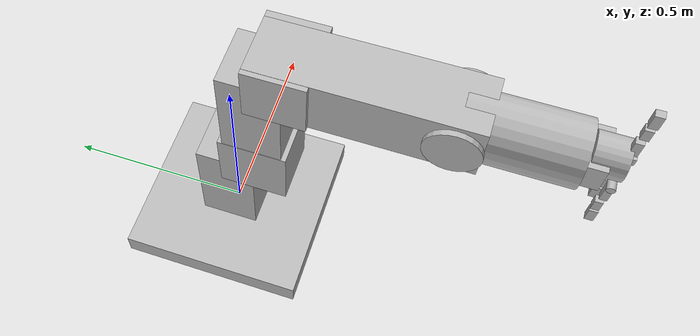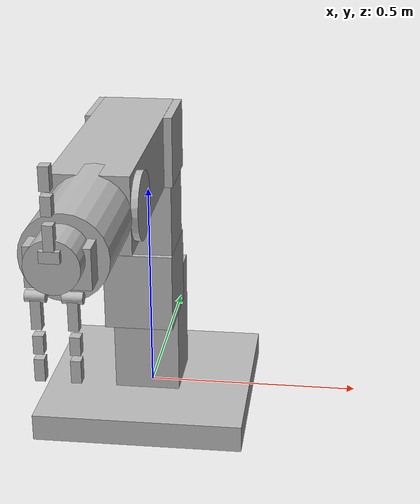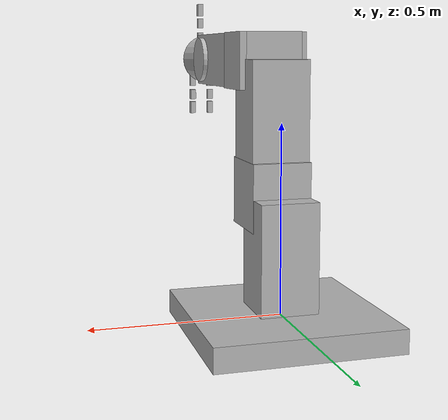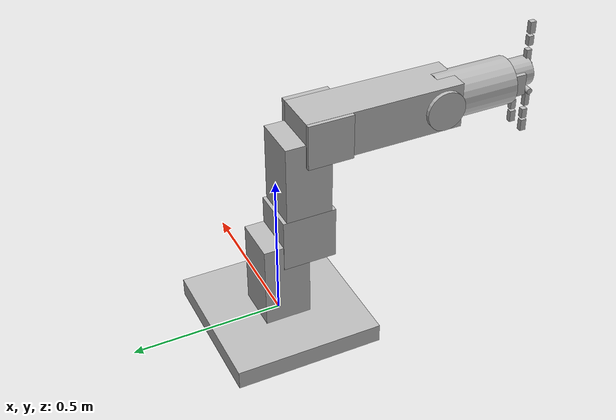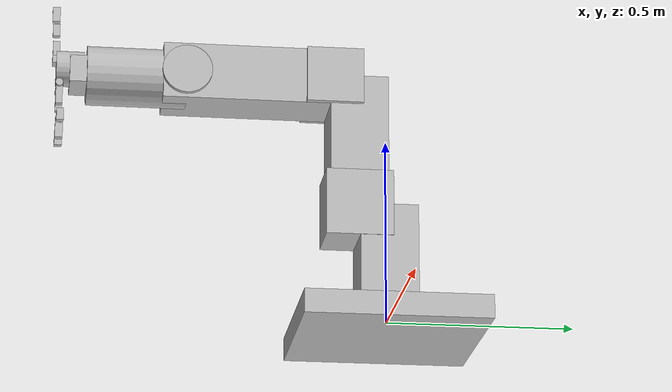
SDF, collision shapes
<sdf version='1.6'>
  <model name='gripbot'>
    <link name='dummy_link'>
      <pose frame=''>0 0 0 0 -0 0</pose>
      <inertial>
        <pose frame=''>0 0 0 0 -0 0</pose>
        <mass>240</mass>
        <inertia>
          <ixx>2.4213</ixx>
          <ixy>0</ixy>
          <ixz>0</ixz>
          <iyy>2.4213</iyy>
          <iyz>0</iyz>
          <izz>4.76351</izz>
        </inertia>
      </inertial>
      <collision name='dummy_link_fixed_joint_lump__gripbot::base_mount_visual_collision'>
        <pose frame=''>0 0 -0.01433 0 -0 0</pose>
        <geometry>
          <box>
            <size>0.4898 0.4898 0.0631</size>
          </box>
        </geometry>
      </collision>
      <visual name='dummy_link_fixed_joint_lump__base_mount_visual_visual'>
        <pose frame=''>0 0 0 0 -0 0</pose>
        <geometry>
          <mesh>
            <scale>1 1 1</scale>
            <uri>/home/ynki9/Dev/catkin/src/gripbot_description/meshes/stl/Circle.004.stl</uri>
          </mesh>
        </geometry>
      </visual>
      <velocity_decay/>
      <velocity_decay/>
      <gravity>1</gravity>
      <velocity_decay/>
    </link>
    <link name='base_column_link'>
      <pose frame=''>0 0 0 0 -0 0</pose>
      <inertial>
        <pose frame=''>0 0 0 0 -0 0</pose>
        <mass>33.204</mass>
        <inertia>
          <ixx>0.17785</ixx>
          <ixy>0</ixy>
          <ixz>0</ixz>
          <iyy>0.15673</iyy>
          <iyz>0</iyz>
          <izz>0.156739</izz>
        </inertia>
      </inertial>
      <collision name='base_column_link_fixed_joint_lump__gripbot::base_column_mount_visual_collision'>
        <pose frame=''>0 -0.07833 0.30885 0 -0 0</pose>
        <geometry>
          <box>
            <size>0.15655 0.17927 0.17927</size>
          </box>
        </geometry>
      </collision>
      <collision name='base_column_link_fixed_joint_lump__gripbot::base_column_visual_collision_1'>
        <pose frame=''>0 0 0.15275 0 -0 0</pose>
        <geometry>
          <box>
            <size>0.15423 0.15423 0.30549</size>
          </box>
        </geometry>
      </collision>
      <visual name='base_column_link_fixed_joint_lump__base_column_receptor_visual_visual'>
        <pose frame=''>0 -0.07833 0.30885 0 -0 0</pose>
        <geometry>
          <mesh>
            <scale>1 1 1</scale>
            <uri>/home/ynki9/Dev/catkin/src/gripbot_description/meshes/stl/Circle.002.stl</uri>
          </mesh>
        </geometry>
      </visual>
      <visual name='base_column_link_fixed_joint_lump__base_column_visual_visual_1'>
        <pose frame=''>0 0 0 0 -0 0</pose>
        <geometry>
          <mesh>
            <scale>1 1 1</scale>
            <uri>/home/ynki9/Dev/catkin/src/gripbot_description/meshes/stl/Circle.stl</uri>
          </mesh>
        </geometry>
      </visual>
      <gravity>0</gravity>
      <velocity_decay/>
    </link>
    <joint name='base_column_link' type='revolute'>
      <child>base_column_link</child>
      <parent>dummy_link</parent>
      <axis>
        <xyz>0 0 1</xyz>
        <limit>
          <lower>-3.14159</lower>
          <upper>3.14159</upper>
          <effort>135</effort>
          <velocity>1</velocity>
        </limit>
        <dynamics>
          <spring_reference>0</spring_reference>
          <spring_stiffness>0</spring_stiffness>
        </dynamics>
        <use_parent_model_frame>1</use_parent_model_frame>
      </axis>
      <physics>
        <ode>
          <limit>
            <cfm>0</cfm>
            <erp>0.2</erp>
          </limit>
        </ode>
      </physics>
    </joint>
    <link name='girdle_visual_link'>
      <pose frame=''>0 -0.07833 0.30885 0 -0 0</pose>
      <inertial>
        <pose frame=''>0 0 0 0 -0 0</pose>
        <mass>8.62636</mass>
        <inertia>
          <ixx>0.085577</ixx>
          <ixy>0</ixy>
          <ixz>0</ixz>
          <iyy>0.085577</iyy>
          <iyz>0</iyz>
          <izz>0.034199</izz>
        </inertia>
      </inertial>
      <collision name='girdle_visual_link_fixed_joint_lump__gripbot::girdle_visual_collision'>
        <pose frame=''>0 0 0.19929 0 -0 0</pose>
        <geometry>
          <box>
            <size>0.15423 0.15423 0.30864</size>
          </box>
        </geometry>
      </collision>
      <visual name='girdle_visual_link_fixed_joint_lump__girdle_mount_visual_visual'>
        <pose frame=''>0 0 0 0 -0 0</pose>
        <geometry>
          <mesh>
            <scale>1 1 1</scale>
            <uri>/home/ynki9/Dev/catkin/src/gripbot_description/meshes/stl/Circle.005.stl</uri>
          </mesh>
        </geometry>
      </visual>
      <visual name='girdle_visual_link_fixed_joint_lump__girdle_receptor_visual_visual_1'>
        <pose frame=''>0 0 0 0 -0 0</pose>
        <geometry>
          <mesh>
            <scale>1 1 1</scale>
            <uri>/home/ynki9/Dev/catkin/src/gripbot_description/meshes/stl/Circle.001.stl</uri>
          </mesh>
        </geometry>
      </visual>
      <visual name='girdle_visual_link_fixed_joint_lump__girdle_visual_visual_2'>
        <pose frame=''>0 0 0 0 -0 0</pose>
        <geometry>
          <mesh>
            <scale>1 1 1</scale>
            <uri>/home/ynki9/Dev/catkin/src/gripbot_description/meshes/stl/Circle.003.stl</uri>
          </mesh>
        </geometry>
      </visual>
      <gravity>0</gravity>
      <velocity_decay/>
      <self_collide>0</self_collide>
    </link>
    <joint name='girdle_visual_link' type='revolute'>
      <child>girdle_visual_link</child>
      <parent>base_column_link</parent>
      <axis>
        <xyz>1 0 0</xyz>
        <limit>
          <lower>-0.5236</lower>
          <upper>1.95477</upper>
          <effort>50000</effort>
          <velocity>1</velocity>
        </limit>
        <dynamics>
          <spring_reference>0</spring_reference>
          <spring_stiffness>0</spring_stiffness>
        </dynamics>
        <use_parent_model_frame>1</use_parent_model_frame>
      </axis>
      <physics>
        <ode>
          <limit>
            <cfm>0</cfm>
            <erp>0.2</erp>
          </limit>
        </ode>
      </physics>
    </joint>
    <link name='arm_visual_link'>
      <pose frame=''>0 -0.14457 0.65861 0 -0 0</pose>
      <inertial>
        <pose frame=''>0 0 0 0 -0 0</pose>
        <mass>19.5672</mass>
        <inertia>
          <ixx>0.50376</ixx>
          <ixy>0</ixy>
          <ixz>0</ixz>
          <iyy>0.0757885</iyy>
          <iyz>0</iyz>
          <izz>0.503755</izz>
        </inertia>
      </inertial>
      <collision name='arm_visual_link_fixed_joint_lump__gripbot::arm_visual_collision'>
        <pose frame=''>-0.00265 -0.19123 0.0002 0 -0 0</pose>
        <geometry>
          <box>
            <size>0.15244 0.53451 0.15245</size>
          </box>
        </geometry>
      </collision>
      <collision name='arm_visual_link_fixed_joint_lump__gripbot::girdle_receptor_visual_collision_1'>
        <pose frame=''>0 0 0 0 -0 0</pose>
        <geometry>
          <box>
            <size>0.18304 0.15204 0.15204</size>
          </box>
        </geometry>
      </collision>
      <visual name='arm_visual_link_fixed_joint_lump__arm_visual_visual'>
        <pose frame=''>0 0 0 0 -0 0</pose>
        <geometry>
          <mesh>
            <scale>1 1 1</scale>
            <uri>/home/ynki9/Dev/catkin/src/gripbot_description/meshes/stl/ID36.001.stl</uri>
          </mesh>
        </geometry>
      </visual>
      <gravity>0</gravity>
      <velocity_decay/>
    </link>
    <joint name='arm_visual_link' type='revolute'>
      <child>arm_visual_link</child>
      <parent>girdle_visual_link</parent>
      <axis>
        <xyz>1 0 0</xyz>
        <limit>
          <lower>-1.5708</lower>
          <upper>0.59341</upper>
          <effort>135</effort>
          <velocity>1</velocity>
        </limit>
        <dynamics>
          <spring_reference>0</spring_reference>
          <spring_stiffness>0</spring_stiffness>
        </dynamics>
        <use_parent_model_frame>1</use_parent_model_frame>
      </axis>
      <physics>
        <ode>
          <limit>
            <cfm>0</cfm>
            <erp>0.2</erp>
          </limit>
        </ode>
      </physics>
    </joint>
    <link name='forearm_visual_link'>
      <pose frame=''>-0.00268 -0.54012 0.65851 0 -0 0</pose>
      <inertial>
        <pose frame=''>0 0 0 0 -0 0</pose>
        <mass>9.05507</mass>
        <inertia>
          <ixx>0.067333</ixx>
          <ixy>0</ixy>
          <ixz>0</ixz>
          <iyy>0.0673332</iyy>
          <iyz>0</iyz>
          <izz>0.028292</izz>
        </inertia>
      </inertial>
      <collision name='forearm_visual_link_fixed_joint_lump__forearm_collision_collision'>
        <pose frame=''>0 -0.1324 0 1.5708 -0 0</pose>
        <geometry>
          <cylinder>
            <length>0.26549</length>
            <radius>0.07905</radius>
          </cylinder>
        </geometry>
      </collision>
      <collision name='forearm_visual_link_fixed_joint_lump__forearm_mount_collision_collision_1'>
        <pose frame=''>0 0 0 1.5708 -0 1.5708</pose>
        <geometry>
          <cylinder>
            <length>0.17955</length>
            <radius>0.0665</radius>
          </cylinder>
        </geometry>
      </collision>
      <visual name='forearm_visual_link_fixed_joint_lump__forearm_visual_visual'>
        <pose frame=''>0 0 0 0 -0 0</pose>
        <geometry>
          <mesh>
            <scale>1 1 1</scale>
            <uri>/home/ynki9/Dev/catkin/src/gripbot_description/meshes/stl/ID82.001.stl</uri>
          </mesh>
        </geometry>
      </visual>
      <gravity>0</gravity>
      <velocity_decay/>
      <self_collide>0</self_collide>
    </link>
    <joint name='forearm_visual_link' type='revolute'>
      <child>forearm_visual_link</child>
      <parent>arm_visual_link</parent>
      <axis>
        <xyz>1 0 0</xyz>
        <limit>
          <lower>-1.5708</lower>
          <upper>2.18166</upper>
          <effort>135</effort>
          <velocity>1</velocity>
        </limit>
        <dynamics>
          <spring_reference>0</spring_reference>
          <spring_stiffness>0</spring_stiffness>
        </dynamics>
        <use_parent_model_frame>1</use_parent_model_frame>
      </axis>
      <physics>
        <ode>
          <limit>
            <cfm>0</cfm>
            <erp>0.2</erp>
          </limit>
        </ode>
      </physics>
    </joint>
    <link name='base_wrist_link'>
      <pose frame=''>-0.00268 -0.80602 0.65851 0 -0 0</pose>
      <inertial>
        <pose frame=''>0 0 0 0 -0 0</pose>
        <mass>3.6</mass>
        <inertia>
          <ixx>0.01</ixx>
          <ixy>0</ixy>
          <ixz>0</ixz>
          <iyy>0.01</iyy>
          <iyz>0</iyz>
          <izz>0.01</izz>
        </inertia>
      </inertial>
      <collision name='base_wrist_link_fixed_joint_lump__base_link_collision_collision'>
        <pose frame=''>-0.00011 -0.00716 4e-05 0 -0 0</pose>
        <geometry>
          <box>
            <size>0.1135 0.07446 0.07319</size>
          </box>
        </geometry>
      </collision>
      <collision name='base_wrist_link_fixed_joint_lump__base_link_collision_1_collision_1'>
        <pose frame=''>-0.00011 -0.04313 0.01634 -1.5708 0 0</pose>
        <geometry>
          <cylinder>
            <length>0.074303</length>
            <radius>0.04771</radius>
          </cylinder>
        </geometry>
      </collision>
      <visual name='base_wrist_link_fixed_joint_lump__base_link_socket_visual_visual'>
        <pose frame=''>-0.00011 -0.00716 4e-05 0 -0 0</pose>
        <geometry>
          <mesh>
            <scale>1 1 1</scale>
            <uri>/home/ynki9/Dev/catkin/src/gripbot_description/meshes/stl/Palm.001.stl</uri>
          </mesh>
        </geometry>
      </visual>
      <visual name='base_wrist_link_fixed_joint_lump__base_link_visual_visual_1'>
        <pose frame=''>-0.00011 -0.00716 4e-05 0 -0 0</pose>
        <geometry>
          <mesh>
            <scale>1 1 1</scale>
            <uri>/home/ynki9/Dev/catkin/src/gripbot_description/meshes/stl/Palm.stl</uri>
          </mesh>
        </geometry>
      </visual>
      <gravity>0</gravity>
      <velocity_decay/>
    </link>
    <joint name='base_wrist_link' type='revolute'>
      <child>base_wrist_link</child>
      <parent>forearm_visual_link</parent>
      <axis>
        <xyz>0 -1 0</xyz>
        <limit>
          <lower>-1.5708</lower>
          <upper>1.5708</upper>
          <effort>10000</effort>
          <velocity>1</velocity>
        </limit>
        <dynamics>
          <spring_reference>0</spring_reference>
          <spring_stiffness>0</spring_stiffness>
        </dynamics>
        <use_parent_model_frame>1</use_parent_model_frame>
      </axis>
      <physics>
        <ode>
          <limit>
            <cfm>0</cfm>
            <erp>0.2</erp>
          </limit>
        </ode>
      </physics>
    </joint>
    <link name='finger_1_base_link'>
      <pose frame=''>-0.03343 -0.87681 0.62052 0 -0 0</pose>
      <inertial>
        <pose frame=''>0 0 0 0 -0 0</pose>
        <mass>0.101</mass>
        <inertia>
          <ixx>0.01</ixx>
          <ixy>0</ixy>
          <ixz>0</ixz>
          <iyy>0.01</iyy>
          <iyz>0</iyz>
          <izz>0.01</izz>
        </inertia>
      </inertial>
      <collision name='finger_1_base_link_fixed_joint_lump__finger_2_base_collision_collision'>
        <pose frame=''>0 0 0 -1.5708 0 1.5708</pose>
        <geometry>
          <cylinder>
            <length>0.034775</length>
            <radius>0.010094</radius>
          </cylinder>
        </geometry>
      </collision>
      <visual name='finger_1_base_link_fixed_joint_lump__finger_1_base_visual_visual'>
        <pose frame=''>0 0 0 0 -0 0</pose>
        <geometry>
          <mesh>
            <scale>1 1 1</scale>
            <uri>/home/ynki9/Dev/catkin/src/gripbot_description/meshes/stl/FingerBase.stl</uri>
          </mesh>
        </geometry>
      </visual>
      <gravity>0</gravity>
      <velocity_decay/>
      <self_collide>0</self_collide>
    </link>
    <joint name='finger_1_base_link' type='revolute'>
      <child>finger_1_base_link</child>
      <parent>base_wrist_link</parent>
      <axis>
        <xyz>0 -1 0</xyz>
        <limit>
          <lower>-2.04204</lower>
          <upper>0.7854</upper>
          <effort>10000</effort>
          <velocity>1</velocity>
        </limit>
        <dynamics>
          <spring_reference>0</spring_reference>
          <spring_stiffness>0</spring_stiffness>
        </dynamics>
        <use_parent_model_frame>1</use_parent_model_frame>
      </axis>
      <physics>
        <ode>
          <limit>
            <cfm>0</cfm>
            <erp>0.2</erp>
          </limit>
        </ode>
      </physics>
    </joint>
    <link name='finger_1_proximal_link'>
      <pose frame=''>-0.03343 -0.87681 0.62052 0 -0 0</pose>
      <inertial>
        <pose frame=''>0 0 0 0 -0 0</pose>
        <mass>0.101</mass>
        <inertia>
          <ixx>0.01</ixx>
          <ixy>0</ixy>
          <ixz>0</ixz>
          <iyy>0.01</iyy>
          <iyz>0</iyz>
          <izz>0.01</izz>
        </inertia>
      </inertial>
      <collision name='finger_1_proximal_link_fixed_joint_lump__finger_1_proximal_collision_collision'>
        <pose frame=''>0 0 -0.03 0 -0 0</pose>
        <geometry>
          <box>
            <size>0.01754 0.01751 0.05287</size>
          </box>
        </geometry>
      </collision>
      <visual name='finger_1_proximal_link_fixed_joint_lump__finger_1_proximal_visual_visual'>
        <pose frame=''>0 0 0 0 -0 0</pose>
        <geometry>
          <mesh>
            <scale>1 1 1</scale>
            <uri>/home/ynki9/Dev/catkin/src/gripbot_description/meshes/stl/FingerProximal.001.stl</uri>
          </mesh>
        </geometry>
      </visual>
      <gravity>0</gravity>
      <velocity_decay/>
      <self_collide>0</self_collide>
    </link>
    <joint name='finger_1_proximal_link' type='revolute'>
      <child>finger_1_proximal_link</child>
      <parent>finger_1_base_link</parent>
      <axis>
        <xyz>-1 0 0</xyz>
        <limit>
          <lower>0</lower>
          <upper>1.5708</upper>
          <effort>10000</effort>
          <velocity>1</velocity>
        </limit>
        <dynamics>
          <spring_reference>0</spring_reference>
          <spring_stiffness>0</spring_stiffness>
        </dynamics>
        <use_parent_model_frame>1</use_parent_model_frame>
      </axis>
      <physics>
        <ode>
          <limit>
            <cfm>0</cfm>
            <erp>0.2</erp>
          </limit>
        </ode>
      </physics>
    </joint>
    <link name='finger_1_mid_link'>
      <pose frame=''>-0.03343 -0.87256 0.56001 0 -0 0</pose>
      <inertial>
        <pose frame=''>0 0 0 0 -0 0</pose>
        <mass>0.101</mass>
        <inertia>
          <ixx>0.01</ixx>
          <ixy>0</ixy>
          <ixz>0</ixz>
          <iyy>0.01</iyy>
          <iyz>0</iyz>
          <izz>0.01</izz>
        </inertia>
      </inertial>
      <collision name='finger_1_mid_link_fixed_joint_lump__finger_1_mid_collision_collision'>
        <pose frame=''>0 -0.00096 -0.02551 0 -0 0</pose>
        <geometry>
          <box>
            <size>0.01784 0.01899 0.03309</size>
          </box>
        </geometry>
      </collision>
      <visual name='finger_1_mid_link_fixed_joint_lump__finger_1_mid_visual_visual'>
        <pose frame=''>0 0 0 0 -0 0</pose>
        <geometry>
          <mesh>
            <scale>1 1 1</scale>
            <uri>/home/ynki9/Dev/catkin/src/gripbot_description/meshes/stl/FingerMid.001.stl</uri>
          </mesh>
        </geometry>
      </visual>
      <gravity>0</gravity>
      <velocity_decay/>
      <self_collide>0</self_collide>
    </link>
    <joint name='finger_1_mid_link' type='revolute'>
      <child>finger_1_mid_link</child>
      <parent>finger_1_proximal_link</parent>
      <axis>
        <xyz>-1 0 0</xyz>
        <limit>
          <lower>0</lower>
          <upper>1.5708</upper>
          <effort>10000</effort>
          <velocity>1</velocity>
        </limit>
        <dynamics>
          <spring_reference>0</spring_reference>
          <spring_stiffness>0</spring_stiffness>
        </dynamics>
        <use_parent_model_frame>1</use_parent_model_frame>
      </axis>
      <physics>
        <ode>
          <limit>
            <cfm>0</cfm>
            <erp>0.2</erp>
          </limit>
        </ode>
      </physics>
    </joint>
    <link name='finger_1_distal_link'>
      <pose frame=''>-0.03343 -0.87297 0.51788 0 -0 0</pose>
      <inertial>
        <pose frame=''>0 0 0 0 -0 0</pose>
        <mass>0.101</mass>
        <inertia>
          <ixx>0.01</ixx>
          <ixy>0</ixy>
          <ixz>0</ixz>
          <iyy>0.01</iyy>
          <iyz>0</iyz>
          <izz>0.01</izz>
        </inertia>
      </inertial>
      <collision name='finger_1_distal_link_fixed_joint_lump__finger_1_distal_collision_collision'>
        <pose frame=''>0 -0.00197 -0.029 0 -0 0</pose>
        <geometry>
          <box>
            <size>0.0175 0.02023 0.04043</size>
          </box>
        </geometry>
      </collision>
      <visual name='finger_1_distal_link_fixed_joint_lump__finger_1_distal_visual_visual'>
        <pose frame=''>0 0 0 0 -0 0</pose>
        <geometry>
          <mesh>
            <scale>1 1 1</scale>
            <uri>/home/ynki9/Dev/catkin/src/gripbot_description/meshes/stl/FingerDistal.001.stl</uri>
          </mesh>
        </geometry>
      </visual>
      <gravity>0</gravity>
      <velocity_decay/>
      <self_collide>0</self_collide>
    </link>
    <joint name='finger_1_distal_link' type='revolute'>
      <child>finger_1_distal_link</child>
      <parent>finger_1_mid_link</parent>
      <axis>
        <xyz>-1 0 0</xyz>
        <limit>
          <lower>0</lower>
          <upper>1.5708</upper>
          <effort>10000</effort>
          <velocity>1</velocity>
        </limit>
        <dynamics>
          <spring_reference>0</spring_reference>
          <spring_stiffness>0</spring_stiffness>
        </dynamics>
        <use_parent_model_frame>1</use_parent_model_frame>
      </axis>
      <physics>
        <ode>
          <limit>
            <cfm>0</cfm>
            <erp>0.2</erp>
          </limit>
        </ode>
      </physics>
    </joint>
    <link name='finger_2_base_link'>
      <pose frame=''>0.02807 -0.87681 0.62052 0 -0 0</pose>
      <inertial>
        <pose frame=''>0 0 0 0 -0 0</pose>
        <mass>0.101</mass>
        <inertia>
          <ixx>0.01</ixx>
          <ixy>0</ixy>
          <ixz>0</ixz>
          <iyy>0.01</iyy>
          <iyz>0</iyz>
          <izz>0.01</izz>
        </inertia>
      </inertial>
      <collision name='finger_2_base_link_fixed_joint_lump__finger_2_base_collision_collision'>
        <pose frame=''>0 0 0 -1.5708 0 1.5708</pose>
        <geometry>
          <cylinder>
            <length>0.034775</length>
            <radius>0.010094</radius>
          </cylinder>
        </geometry>
      </collision>
      <visual name='finger_2_base_link_fixed_joint_lump__finger_2_base_visual_visual'>
        <pose frame=''>0 0 0 -1.5708 0 1.5708</pose>
        <geometry>
          <mesh>
            <scale>1 1 1</scale>
            <uri>/home/ynki9/Dev/catkin/src/gripbot_description/meshes/stl/FingerBase.001.stl</uri>
          </mesh>
        </geometry>
      </visual>
      <gravity>0</gravity>
      <velocity_decay/>
      <self_collide>0</self_collide>
    </link>
    <joint name='finger_2_base_link' type='revolute'>
      <child>finger_2_base_link</child>
      <parent>base_wrist_link</parent>
      <axis>
        <xyz>0 -1 0</xyz>
        <limit>
          <lower>-0.7854</lower>
          <upper>2.04204</upper>
          <effort>10000</effort>
          <velocity>1</velocity>
        </limit>
        <dynamics>
          <spring_reference>0</spring_reference>
          <spring_stiffness>0</spring_stiffness>
        </dynamics>
        <use_parent_model_frame>1</use_parent_model_frame>
      </axis>
      <physics>
        <ode>
          <limit>
            <cfm>0</cfm>
            <erp>0.2</erp>
          </limit>
        </ode>
      </physics>
    </joint>
    <link name='finger_2_proximal_link'>
      <pose frame=''>0.02807 -0.87681 0.62052 0 -0 0</pose>
      <inertial>
        <pose frame=''>0 0 0 0 -0 0</pose>
        <mass>0.101</mass>
        <inertia>
          <ixx>0.01</ixx>
          <ixy>0</ixy>
          <ixz>0</ixz>
          <iyy>0.01</iyy>
          <iyz>0</iyz>
          <izz>0.01</izz>
        </inertia>
      </inertial>
      <collision name='finger_2_proximal_link_fixed_joint_lump__finger_2_proximal_collision_collision'>
        <pose frame=''>0 0 -0.03 0 -0 0</pose>
        <geometry>
          <box>
            <size>0.01754 0.01751 0.05287</size>
          </box>
        </geometry>
      </collision>
      <visual name='finger_2_proximal_link_fixed_joint_lump__finger_2_proximal_visual_visual'>
        <pose frame=''>0 0 0 0 -0 0</pose>
        <geometry>
          <mesh>
            <scale>1 1 1</scale>
            <uri>/home/ynki9/Dev/catkin/src/gripbot_description/meshes/stl/FingerProximal.stl</uri>
          </mesh>
        </geometry>
      </visual>
      <gravity>0</gravity>
      <velocity_decay/>
      <self_collide>0</self_collide>
    </link>
    <joint name='finger_2_proximal_link' type='revolute'>
      <child>finger_2_proximal_link</child>
      <parent>finger_2_base_link</parent>
      <axis>
        <xyz>1 0 0</xyz>
        <limit>
          <lower>-1.5708</lower>
          <upper>0</upper>
          <effort>10000</effort>
          <velocity>1</velocity>
        </limit>
        <dynamics>
          <spring_reference>0</spring_reference>
          <spring_stiffness>0</spring_stiffness>
        </dynamics>
        <use_parent_model_frame>1</use_parent_model_frame>
      </axis>
      <physics>
        <ode>
          <limit>
            <cfm>0</cfm>
            <erp>0.2</erp>
          </limit>
        </ode>
      </physics>
    </joint>
    <link name='finger_2_mid_link'>
      <pose frame=''>0.02807 -0.87256 0.56001 0 -0 0</pose>
      <inertial>
        <pose frame=''>0 0 0 0 -0 0</pose>
        <mass>0.101</mass>
        <inertia>
          <ixx>0.01</ixx>
          <ixy>0</ixy>
          <ixz>0</ixz>
          <iyy>0.01</iyy>
          <iyz>0</iyz>
          <izz>0.01</izz>
        </inertia>
      </inertial>
      <collision name='finger_2_mid_link_fixed_joint_lump__finger_2_mid_collision_collision'>
        <pose frame=''>0 0 -0.02551 0 -0 0</pose>
        <geometry>
          <box>
            <size>0.01784 0.01899 0.03281</size>
          </box>
        </geometry>
      </collision>
      <visual name='finger_2_mid_link_fixed_joint_lump__finger_2_mid_visual_visual'>
        <pose frame=''>0 0 0 0 -0 0</pose>
        <geometry>
          <mesh>
            <scale>1 1 1</scale>
            <uri>/home/ynki9/Dev/catkin/src/gripbot_description/meshes/stl/FingerMid.002.stl</uri>
          </mesh>
        </geometry>
      </visual>
      <gravity>0</gravity>
      <velocity_decay/>
      <self_collide>0</self_collide>
    </link>
    <joint name='finger_2_mid_link' type='revolute'>
      <child>finger_2_mid_link</child>
      <parent>finger_2_proximal_link</parent>
      <axis>
        <xyz>1 0 0</xyz>
        <limit>
          <lower>-1.5708</lower>
          <upper>0</upper>
          <effort>10000</effort>
          <velocity>1</velocity>
        </limit>
        <dynamics>
          <spring_reference>0</spring_reference>
          <spring_stiffness>0</spring_stiffness>
        </dynamics>
        <use_parent_model_frame>1</use_parent_model_frame>
      </axis>
      <physics>
        <ode>
          <limit>
            <cfm>0</cfm>
            <erp>0.2</erp>
          </limit>
        </ode>
      </physics>
    </joint>
    <link name='finger_2_distal_link'>
      <pose frame=''>0.02807 -0.87297 0.51802 0 -0 0</pose>
      <inertial>
        <pose frame=''>0 0 0 0 -0 0</pose>
        <mass>0.101</mass>
        <inertia>
          <ixx>0.01</ixx>
          <ixy>0</ixy>
          <ixz>0</ixz>
          <iyy>0.01</iyy>
          <iyz>0</iyz>
          <izz>0.01</izz>
        </inertia>
      </inertial>
      <collision name='finger_2_distal_link_fixed_joint_lump__finger_2_distal_collision_collision'>
        <pose frame=''>0 -0.00197 -0.02913 0 -0 0</pose>
        <geometry>
          <box>
            <size>0.0175 0.02023 0.04043</size>
          </box>
        </geometry>
      </collision>
      <visual name='finger_2_distal_link_fixed_joint_lump__finger_2_distal_visual_visual'>
        <pose frame=''>0 0 0 0 -0 0</pose>
        <geometry>
          <mesh>
            <scale>1 1 1</scale>
            <uri>/home/ynki9/Dev/catkin/src/gripbot_description/meshes/stl/FingerDistal.stl</uri>
          </mesh>
        </geometry>
      </visual>
      <gravity>0</gravity>
      <velocity_decay/>
      <self_collide>0</self_collide>
    </link>
    <joint name='finger_2_distal_link' type='revolute'>
      <child>finger_2_distal_link</child>
      <parent>finger_2_mid_link</parent>
      <axis>
        <xyz>1 0 0</xyz>
        <limit>
          <lower>-1.5708</lower>
          <upper>0</upper>
          <effort>10000</effort>
          <velocity>1</velocity>
        </limit>
        <dynamics>
          <spring_reference>0</spring_reference>
          <spring_stiffness>0</spring_stiffness>
        </dynamics>
        <use_parent_model_frame>1</use_parent_model_frame>
      </axis>
      <physics>
        <ode>
          <limit>
            <cfm>0</cfm>
            <erp>0.2</erp>
          </limit>
        </ode>
      </physics>
    </joint>
    <link name='finger_3_proximal_link'>
      <pose frame=''>-0.00293 -0.88682 0.69652 0 -0 0</pose>
      <inertial>
        <pose frame=''>0 0 0 0 -0 0</pose>
        <mass>0.101</mass>
        <inertia>
          <ixx>0.01</ixx>
          <ixy>0</ixy>
          <ixz>0</ixz>
          <iyy>0.01</iyy>
          <iyz>0</iyz>
          <izz>0.01</izz>
        </inertia>
      </inertial>
      <collision name='finger_3_proximal_link_fixed_joint_lump__finger_3_base_collision_collision'>
        <pose frame=''>0 0 0 0 -0 0</pose>
        <geometry>
          <box>
            <size>0.03477 0.02019 0.02019</size>
          </box>
        </geometry>
      </collision>
      <collision name='finger_3_proximal_link_fixed_joint_lump__finger_3_proximal_collision_1'>
        <pose frame=''>0 0 0.0275 0 -0 0</pose>
        <geometry>
          <box>
            <size>0.01755 0.01858 0.05311</size>
          </box>
        </geometry>
      </collision>
      <visual name='finger_3_proximal_link_fixed_joint_lump__finger_3_proximal_visual_visual'>
        <pose frame=''>0 0 0 0 -0 0</pose>
        <geometry>
          <mesh>
            <scale>1 1 1</scale>
            <uri>/home/ynki9/Dev/catkin/src/gripbot_description/meshes/stl/FingerProximal.003.stl</uri>
          </mesh>
        </geometry>
      </visual>
      <gravity>0</gravity>
      <velocity_decay/>
      <self_collide>0</self_collide>
    </link>
    <joint name='finger_3_proximal_link' type='revolute'>
      <child>finger_3_proximal_link</child>
      <parent>base_wrist_link</parent>
      <axis>
        <xyz>1 0 0</xyz>
        <limit>
          <lower>-0.7854</lower>
          <upper>1.72788</upper>
          <effort>10000</effort>
          <velocity>1</velocity>
        </limit>
        <dynamics>
          <spring_reference>0</spring_reference>
          <spring_stiffness>0</spring_stiffness>
        </dynamics>
        <use_parent_model_frame>1</use_parent_model_frame>
      </axis>
      <physics>
        <ode>
          <limit>
            <cfm>0</cfm>
            <erp>0.2</erp>
          </limit>
        </ode>
      </physics>
    </joint>
    <link name='finger_3_mid_link'>
      <pose frame=''>-0.00293 -0.88723 0.75703 0 -0 0</pose>
      <inertial>
        <pose frame=''>0 0 0 0 -0 0</pose>
        <mass>0.101</mass>
        <inertia>
          <ixx>0.01</ixx>
          <ixy>0</ixy>
          <ixz>0</ixz>
          <iyy>0.01</iyy>
          <iyz>0</iyz>
          <izz>0.01</izz>
        </inertia>
      </inertial>
      <collision name='finger_3_mid_link_fixed_joint_lump__finger_3_mid_collision_collision'>
        <pose frame=''>0 -0.00096 0.02551 0 -0 0</pose>
        <geometry>
          <box>
            <size>0.01784 0.01899 0.03281</size>
          </box>
        </geometry>
      </collision>
      <visual name='finger_3_mid_link_fixed_joint_lump__finger_3_mid_visual_visual'>
        <pose frame=''>0 0 0 0 -0 0</pose>
        <geometry>
          <mesh>
            <scale>1 1 1</scale>
            <uri>/home/ynki9/Dev/catkin/src/gripbot_description/meshes/stl/FingerMid.003.stl</uri>
          </mesh>
        </geometry>
      </visual>
      <gravity>0</gravity>
      <velocity_decay/>
      <self_collide>0</self_collide>
    </link>
    <joint name='finger_3_mid_link' type='revolute'>
      <child>finger_3_mid_link</child>
      <parent>finger_3_proximal_link</parent>
      <axis>
        <xyz>1 0 0</xyz>
        <limit>
          <lower>0</lower>
          <upper>1.72788</upper>
          <effort>10000</effort>
          <velocity>1</velocity>
        </limit>
        <dynamics>
          <spring_reference>0</spring_reference>
          <spring_stiffness>0</spring_stiffness>
        </dynamics>
        <use_parent_model_frame>1</use_parent_model_frame>
      </axis>
      <physics>
        <ode>
          <limit>
            <cfm>0</cfm>
            <erp>0.2</erp>
          </limit>
        </ode>
      </physics>
    </joint>
    <link name='finger_3_distal_link'>
      <pose frame=''>-0.00293 -0.88764 0.79902 0 -0 0</pose>
      <inertial>
        <pose frame=''>0 0 0 0 -0 0</pose>
        <mass>0.101</mass>
        <inertia>
          <ixx>0.01</ixx>
          <ixy>0</ixy>
          <ixz>0</ixz>
          <iyy>0.01</iyy>
          <iyz>0</iyz>
          <izz>0.01</izz>
        </inertia>
      </inertial>
      <collision name='finger_3_distal_link_fixed_joint_lump__finger_3_distal_collision_collision'>
        <pose frame=''>0 -0.00197 0.02913 0 -0 0</pose>
        <geometry>
          <box>
            <size>0.0175 0.02023 0.04043</size>
          </box>
        </geometry>
      </collision>
      <visual name='finger_3_distal_link_fixed_joint_lump__finger_3_distal_visual_visual'>
        <pose frame=''>0 0 0 0 -0 0</pose>
        <geometry>
          <mesh>
            <scale>1 1 1</scale>
            <uri>/home/ynki9/Dev/catkin/src/gripbot_description/meshes/stl/FingerDistal.003.stl</uri>
          </mesh>
        </geometry>
      </visual>
      <gravity>0</gravity>
      <velocity_decay/>
      <self_collide>0</self_collide>
    </link>
    <joint name='finger_3_distal_link' type='revolute'>
      <child>finger_3_distal_link</child>
      <parent>finger_3_mid_link</parent>
      <axis>
        <xyz>1 0 0</xyz>
        <limit>
          <lower>0</lower>
          <upper>1.72788</upper>
          <effort>10000</effort>
          <velocity>1</velocity>
        </limit>
        <dynamics>
          <spring_reference>0</spring_reference>
          <spring_stiffness>0</spring_stiffness>
        </dynamics>
        <use_parent_model_frame>1</use_parent_model_frame>
      </axis>
      <physics>
        <ode>
          <limit>
            <cfm>0</cfm>
            <erp>0.2</erp>
          </limit>
        </ode>
      </physics>
    </joint>
    <static>0</static>
    <plugin name='gazebo_ros_control' filename='libgazebo_ros_control.so'>
      <robotNamespace>/gripbot</robotNamespace>
      <robotSimType>gazebo_ros_control/DefaultRobotHWSim</robotSimType>
      <legacyModeNS>1</legacyModeNS>
    </plugin>
  </model>
</sdf>
